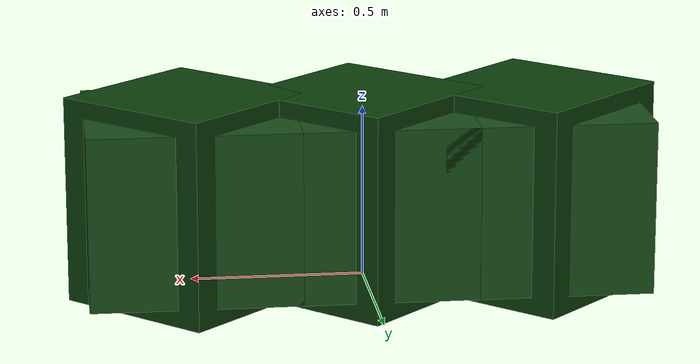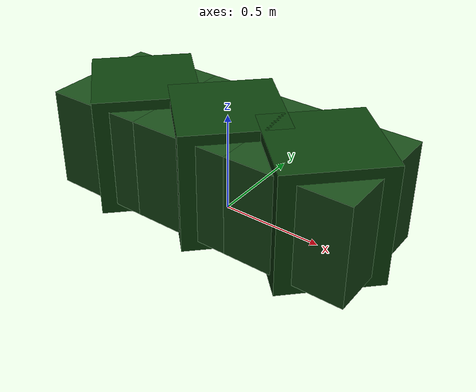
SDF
<?xml version="1.0" ?>
<sdf version="1.6">
  <model name="little_shrub">
    <static>true</static>
    <link name="link">
      <pose>0 0 0.25 0 0 0</pose>

      <visual name="blok1_laag_1">
        <pose>-0.5 0 0 0 0 0</pose>
        <geometry><box><size>0.6 0.6 0.5</size></box></geometry>
        <material>
          <ambient>0.05 0.25 0.05 1</ambient>
          <diffuse>0.1 0.3 0.1 1</diffuse>
        </material>
        <transparency>0.05</transparency>
      </visual>
      <visual name="blok1_laag_2">
        <pose>-0.5 0 0 0 0 0.785</pose>
        <geometry><box><size>0.5 0.5 0.6</size></box></geometry>
        <material>
          <ambient>0.02 0.2 0.02 1</ambient>
          <diffuse>0.05 0.25 0.05 1</diffuse>
        </material>
        <transparency>0.05</transparency>
      </visual>

      <visual name="blok2_laag_1">
        <pose>0 0 0 0 0 0</pose>
        <geometry><box><size>0.6 0.6 0.5</size></box></geometry>
        <material>
          <ambient>0.05 0.25 0.05 1</ambient>
          <diffuse>0.1 0.3 0.1 1</diffuse>
        </material>
        <transparency>0.05</transparency>
      </visual>
      <visual name="blok2_laag_2">
        <pose>0 0 0 0 0 0.785</pose>
        <geometry><box><size>0.5 0.5 0.6</size></box></geometry>
        <material>
          <ambient>0.02 0.2 0.02 1</ambient>
          <diffuse>0.05 0.25 0.05 1</diffuse>
        </material>
        <transparency>0.05</transparency>
      </visual>

      <visual name="blok3_laag_1">
        <pose>0.5 0 0 0 0 0</pose>
        <geometry><box><size>0.6 0.6 0.5</size></box></geometry>
        <material>
          <ambient>0.05 0.25 0.05 1</ambient>
          <diffuse>0.1 0.3 0.1 1</diffuse>
        </material>
        <transparency>0.05</transparency>
      </visual>
      <visual name="blok3_laag_2">
        <pose>0.5 0 0 0 0 0.785</pose>
        <geometry><box><size>0.5 0.5 0.6</size></box></geometry>
        <material>
          <ambient>0.02 0.2 0.02 1</ambient>
          <diffuse>0.05 0.25 0.05 1</diffuse>
        </material>
        <transparency>0.05</transparency>
      </visual>

      <collision name="collision">
        <geometry>
          <box><size>1.6 0.6 0.6</size></box>
        </geometry>
      </collision>
    </link>
  </model>
</sdf>
